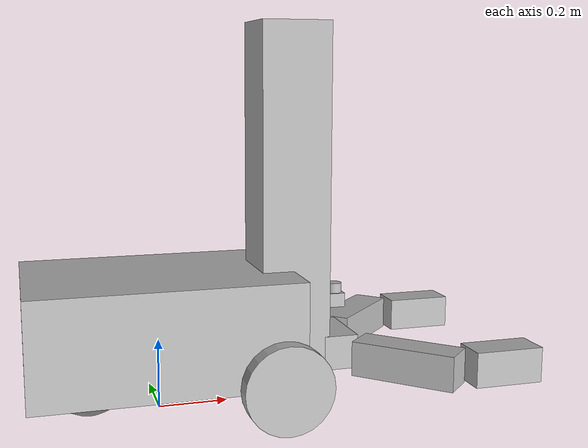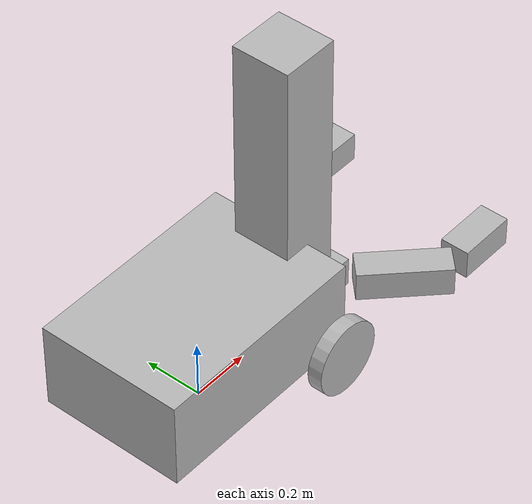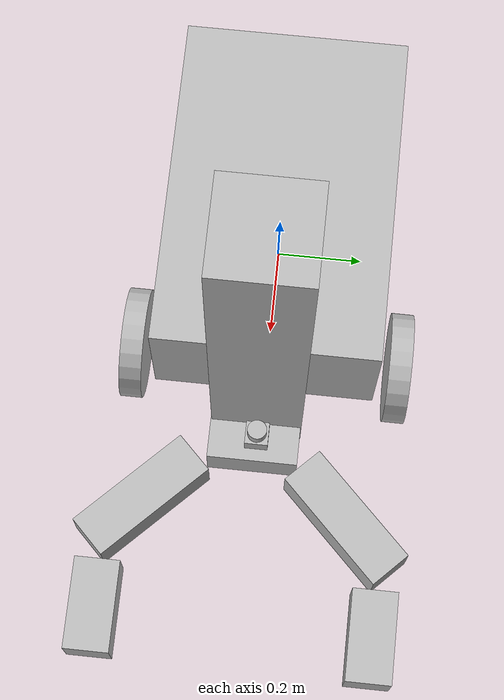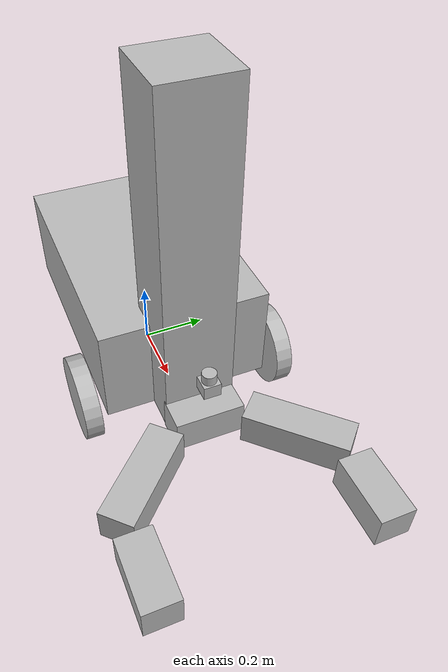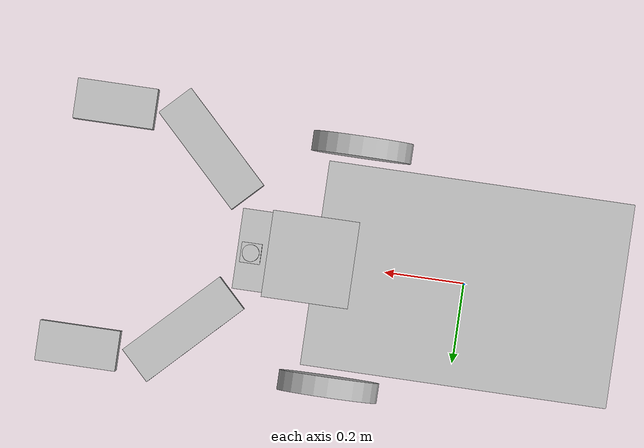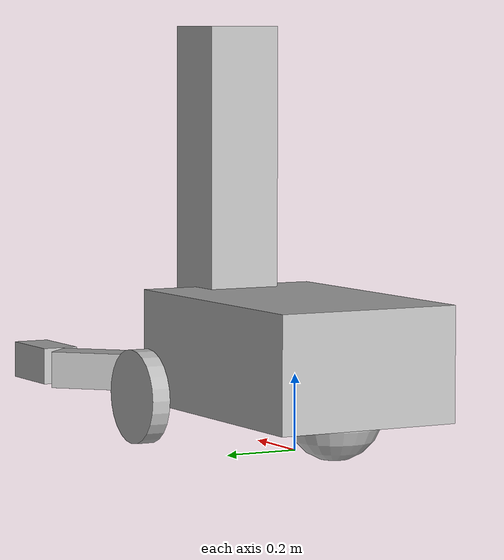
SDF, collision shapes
<?xml version='1.0'?>
<sdf version='1.6'>
  <model name='project1_mobile_manipulator'>
    <link name='project1_gripper::riser'>
      <pose frame=''>0.383654 -0.005982 0.6 0 -0 0</pose>
      <inertial>
        <pose frame=''>0 0 -0.5 0 -0 0</pose>
        <inertia>
          <ixx>0.01</ixx>
          <ixy>0</ixy>
          <ixz>0</ixz>
          <iyy>0.01</iyy>
          <iyz>0</iyz>
          <izz>0.01</izz>
        </inertia>
        <mass>10</mass>
      </inertial>
      <self_collide>0</self_collide>
      <kinematic>0</kinematic>
      <visual name='visual'>
        <geometry>
          <box>
            <size>0.2 0.2 1</size>
          </box>
        </geometry>
        <material>
          <script>
            <uri>__default__</uri>
            <name>__default__</name>
          </script>
          <shader type='pixel'>
            <normal_map>__default__</normal_map>
          </shader>
        </material>
        <pose frame=''>0 0 0 0 -0 0</pose>
        <cast_shadows>1</cast_shadows>
        <transparency>0</transparency>
      </visual>
      <collision name='collision'>
        <laser_retro>0</laser_retro>
        <max_contacts>10</max_contacts>
        <pose frame=''>0 0 0 0 -0 0</pose>
        <geometry>
          <box>
            <size>0.2 0.2 1</size>
          </box>
        </geometry>
        <surface>
          <friction>
            <ode>
              <mu>1</mu>
              <mu2>1</mu2>
              <fdir1>0 0 0</fdir1>
              <slip1>0</slip1>
              <slip2>0</slip2>
            </ode>
            <torsional>
              <coefficient>1</coefficient>
              <patch_radius>0</patch_radius>
              <surface_radius>0</surface_radius>
              <use_patch_radius>1</use_patch_radius>
              <ode>
                <slip>0</slip>
              </ode>
            </torsional>
          </friction>
          <bounce>
            <restitution_coefficient>0</restitution_coefficient>
            <threshold>1e+06</threshold>
          </bounce>
          <contact>
            <collide_without_contact>0</collide_without_contact>
            <collide_without_contact_bitmask>1</collide_without_contact_bitmask>
            <collide_bitmask>1</collide_bitmask>
            <ode>
              <soft_cfm>0</soft_cfm>
              <soft_erp>0.2</soft_erp>
              <kp>1e+13</kp>
              <kd>1</kd>
              <max_vel>0.01</max_vel>
              <min_depth>0</min_depth>
            </ode>
            <bullet>
              <split_impulse>1</split_impulse>
              <split_impulse_penetration_threshold>-0.01</split_impulse_penetration_threshold>
              <soft_cfm>0</soft_cfm>
              <soft_erp>0.2</soft_erp>
              <kp>1e+13</kp>
              <kd>1</kd>
            </bullet>
          </contact>
        </surface>
      </collision>
    </link>
    <link name='hokuyo::link'>
      <pose frame=''>0.533919 -0.000274 0.3 0 -0 0</pose>
      <inertial>
        <mass>0.1</mass>
        <inertia>
          <ixx>1</ixx>
          <ixy>0</ixy>
          <ixz>0</ixz>
          <iyy>1</iyy>
          <iyz>0</iyz>
          <izz>1</izz>
        </inertia>
      </inertial>
      <self_collide>0</self_collide>
      <kinematic>0</kinematic>
      <sensor name='laser' type='ray'>
        <pose frame=''>0.01 0 0.0175 0 -0 0</pose>
        <ray>
          <scan>
            <horizontal>
              <samples>640</samples>
              <resolution>1</resolution>
              <min_angle>-2.26889</min_angle>
              <max_angle>2.2689</max_angle>
            </horizontal>
            <vertical>
              <samples>1</samples>
              <min_angle>0</min_angle>
              <max_angle>0</max_angle>
            </vertical>
          </scan>
          <range>
            <min>0.08</min>
            <max>10</max>
            <resolution>0.01</resolution>
          </range>
        </ray>
        <plugin name='laser' filename='libRayPlugin.so'/>
        <always_on>1</always_on>
        <update_rate>30</update_rate>
        <visualize>1</visualize>
      </sensor>
      <visual name='visual'>
        <geometry>
          <mesh>
            <uri>model://hokuyo/meshes/hokuyo.dae</uri>
          </mesh>
        </geometry>
        <material>
          <shader type='pixel'/>
        </material>
        <pose frame=''>0 0 0 0 -0 0</pose>
        <cast_shadows>1</cast_shadows>
        <transparency>0</transparency>
      </visual>
      <collision name='collision-top'>
        <laser_retro>0</laser_retro>
        <max_contacts>10</max_contacts>
        <pose frame=''>0 0 0.0205 0 -0 0</pose>
        <geometry>
          <cylinder>
            <radius>0.021</radius>
            <length>0.029</length>
          </cylinder>
        </geometry>
        <surface>
          <friction>
            <ode>
              <mu>1</mu>
              <mu2>1</mu2>
              <fdir1>0 0 0</fdir1>
              <slip1>0</slip1>
              <slip2>0</slip2>
            </ode>
            <torsional>
              <coefficient>1</coefficient>
              <patch_radius>0</patch_radius>
              <surface_radius>0</surface_radius>
              <use_patch_radius>1</use_patch_radius>
              <ode>
                <slip>0</slip>
              </ode>
            </torsional>
          </friction>
          <bounce>
            <restitution_coefficient>0</restitution_coefficient>
            <threshold>1e+06</threshold>
          </bounce>
          <contact>
            <collide_without_contact>0</collide_without_contact>
            <collide_without_contact_bitmask>1</collide_without_contact_bitmask>
            <collide_bitmask>1</collide_bitmask>
            <ode>
              <soft_cfm>0</soft_cfm>
              <soft_erp>0.2</soft_erp>
              <kp>1e+13</kp>
              <kd>1</kd>
              <max_vel>0.01</max_vel>
              <min_depth>0</min_depth>
            </ode>
            <bullet>
              <split_impulse>1</split_impulse>
              <split_impulse_penetration_threshold>-0.01</split_impulse_penetration_threshold>
              <soft_cfm>0</soft_cfm>
              <soft_erp>0.2</soft_erp>
              <kp>1e+13</kp>
              <kd>1</kd>
            </bullet>
          </contact>
        </surface>
      </collision>
      <collision name='collision-base'>
        <laser_retro>0</laser_retro>
        <max_contacts>10</max_contacts>
        <pose frame=''>0 0 -0.0145 0 -0 0</pose>
        <geometry>
          <box>
            <size>0.05 0.05 0.041</size>
          </box>
        </geometry>
        <surface>
          <friction>
            <ode>
              <mu>1</mu>
              <mu2>1</mu2>
              <fdir1>0 0 0</fdir1>
              <slip1>0</slip1>
              <slip2>0</slip2>
            </ode>
            <torsional>
              <coefficient>1</coefficient>
              <patch_radius>0</patch_radius>
              <surface_radius>0</surface_radius>
              <use_patch_radius>1</use_patch_radius>
              <ode>
                <slip>0</slip>
              </ode>
            </torsional>
          </friction>
          <bounce>
            <restitution_coefficient>0</restitution_coefficient>
            <threshold>1e+06</threshold>
          </bounce>
          <contact>
            <collide_without_contact>0</collide_without_contact>
            <collide_without_contact_bitmask>1</collide_without_contact_bitmask>
            <collide_bitmask>1</collide_bitmask>
            <ode>
              <soft_cfm>0</soft_cfm>
              <soft_erp>0.2</soft_erp>
              <kp>1e+13</kp>
              <kd>1</kd>
              <max_vel>0.01</max_vel>
              <min_depth>0</min_depth>
            </ode>
            <bullet>
              <split_impulse>1</split_impulse>
              <split_impulse_penetration_threshold>-0.01</split_impulse_penetration_threshold>
              <soft_cfm>0</soft_cfm>
              <soft_erp>0.2</soft_erp>
              <kp>1e+13</kp>
              <kd>1</kd>
            </bullet>
          </contact>
        </surface>
      </collision>
    </link>
    <link name='project1_gripper::left_finger'>
      <pose frame=''>0.673848 0.210079 0.15 0 0 -0.78539</pose>
      <inertial>
        <inertia>
          <ixx>0.01</ixx>
          <ixy>0</ixy>
          <ixz>0</ixz>
          <iyy>0.01</iyy>
          <iyz>0</iyz>
          <izz>0.01</izz>
        </inertia>
        <mass>0.1</mass>
      </inertial>
      <self_collide>0</self_collide>
      <kinematic>0</kinematic>
      <visual name='visual'>
        <geometry>
          <box>
            <size>0.1 0.3 0.1</size>
          </box>
        </geometry>
        <material>
          <script>
            <uri>__default__</uri>
            <name>__default__</name>
          </script>
          <shader type='pixel'/>
        </material>
        <pose frame=''>0 0 0 0 -0 0</pose>
        <cast_shadows>1</cast_shadows>
        <transparency>0</transparency>
      </visual>
      <collision name='collision'>
        <laser_retro>0</laser_retro>
        <max_contacts>10</max_contacts>
        <pose frame=''>0 0 0 0 -0 0</pose>
        <geometry>
          <box>
            <size>0.1 0.3 0.1</size>
          </box>
        </geometry>
        <surface>
          <friction>
            <ode>
              <mu>1</mu>
              <mu2>1</mu2>
              <fdir1>0 0 0</fdir1>
              <slip1>0</slip1>
              <slip2>0</slip2>
            </ode>
            <torsional>
              <coefficient>1</coefficient>
              <patch_radius>0</patch_radius>
              <surface_radius>0</surface_radius>
              <use_patch_radius>1</use_patch_radius>
              <ode>
                <slip>0</slip>
              </ode>
            </torsional>
          </friction>
          <bounce>
            <restitution_coefficient>0</restitution_coefficient>
            <threshold>1e+06</threshold>
          </bounce>
          <contact>
            <collide_without_contact>0</collide_without_contact>
            <collide_without_contact_bitmask>1</collide_without_contact_bitmask>
            <collide_bitmask>1</collide_bitmask>
            <ode>
              <soft_cfm>0</soft_cfm>
              <soft_erp>0.2</soft_erp>
              <kp>1e+13</kp>
              <kd>1</kd>
              <max_vel>0.01</max_vel>
              <min_depth>0</min_depth>
            </ode>
            <bullet>
              <split_impulse>1</split_impulse>
              <split_impulse_penetration_threshold>-0.01</split_impulse_penetration_threshold>
              <soft_cfm>0</soft_cfm>
              <soft_erp>0.2</soft_erp>
              <kp>1e+13</kp>
              <kd>1</kd>
            </bullet>
          </contact>
        </surface>
      </collision>
    </link>
    <link name='project1_gripper::left_finger_tip'>
      <pose frame=''>0.926306 0.287229 0.15 0 -0 1.5707</pose>
      <inertial>
        <inertia>
          <ixx>0.01</ixx>
          <ixy>0</ixy>
          <ixz>0</ixz>
          <iyy>0.01</iyy>
          <iyz>0</iyz>
          <izz>0.01</izz>
        </inertia>
        <mass>0.1</mass>
      </inertial>
      <self_collide>0</self_collide>
      <kinematic>0</kinematic>
      <visual name='visual'>
        <geometry>
          <box>
            <size>0.1 0.2 0.1</size>
          </box>
        </geometry>
        <material>
          <script>
            <uri>__default__</uri>
            <name>__default__</name>
          </script>
          <shader type='pixel'/>
        </material>
        <pose frame=''>0 0 0 0 -0 0</pose>
        <cast_shadows>1</cast_shadows>
        <transparency>0</transparency>
      </visual>
      <collision name='collision'>
        <laser_retro>0</laser_retro>
        <max_contacts>10</max_contacts>
        <pose frame=''>0 0 0 0 -0 0</pose>
        <geometry>
          <box>
            <size>0.1 0.2 0.1</size>
          </box>
        </geometry>
        <surface>
          <friction>
            <ode>
              <mu>1</mu>
              <mu2>1</mu2>
              <fdir1>0 0 0</fdir1>
              <slip1>0</slip1>
              <slip2>0</slip2>
            </ode>
            <torsional>
              <coefficient>1</coefficient>
              <patch_radius>0</patch_radius>
              <surface_radius>0</surface_radius>
              <use_patch_radius>1</use_patch_radius>
              <ode>
                <slip>0</slip>
              </ode>
            </torsional>
          </friction>
          <bounce>
            <restitution_coefficient>0</restitution_coefficient>
            <threshold>1e+06</threshold>
          </bounce>
          <contact>
            <collide_without_contact>0</collide_without_contact>
            <collide_without_contact_bitmask>1</collide_without_contact_bitmask>
            <collide_bitmask>1</collide_bitmask>
            <ode>
              <soft_cfm>0</soft_cfm>
              <soft_erp>0.2</soft_erp>
              <kp>1e+13</kp>
              <kd>1</kd>
              <max_vel>0.01</max_vel>
              <min_depth>0</min_depth>
            </ode>
            <bullet>
              <split_impulse>1</split_impulse>
              <split_impulse_penetration_threshold>-0.01</split_impulse_penetration_threshold>
              <soft_cfm>0</soft_cfm>
              <soft_erp>0.2</soft_erp>
              <kp>1e+13</kp>
              <kd>1</kd>
            </bullet>
          </contact>
        </surface>
      </collision>
    </link>
    <link name='project1_gripper::palm'>
      <pose frame=''>0.519563 -0.007784 0.15 0 -0 0</pose>
      <inertial>
        <inertia>
          <ixx>0.01</ixx>
          <ixy>0</ixy>
          <ixz>0</ixz>
          <iyy>0.01</iyy>
          <iyz>0</iyz>
          <izz>0.01</izz>
        </inertia>
        <mass>0.5</mass>
      </inertial>
      <self_collide>0</self_collide>
      <kinematic>0</kinematic>
      <visual name='visual'>
        <geometry>
          <box>
            <size>0.1 0.2 0.1</size>
          </box>
        </geometry>
        <material>
          <script>
            <uri>__default__</uri>
            <name>__default__</name>
          </script>
          <shader type='pixel'/>
        </material>
        <pose frame=''>0 0 0 0 -0 0</pose>
        <cast_shadows>1</cast_shadows>
        <transparency>0</transparency>
      </visual>
      <collision name='collision'>
        <laser_retro>0</laser_retro>
        <max_contacts>10</max_contacts>
        <pose frame=''>0 0 0 0 -0 0</pose>
        <geometry>
          <box>
            <size>0.1 0.2 0.1</size>
          </box>
        </geometry>
        <surface>
          <friction>
            <ode>
              <mu>1</mu>
              <mu2>1</mu2>
              <fdir1>0 0 0</fdir1>
              <slip1>0</slip1>
              <slip2>0</slip2>
            </ode>
            <torsional>
              <coefficient>1</coefficient>
              <patch_radius>0</patch_radius>
              <surface_radius>0</surface_radius>
              <use_patch_radius>1</use_patch_radius>
              <ode>
                <slip>0</slip>
              </ode>
            </torsional>
          </friction>
          <bounce>
            <restitution_coefficient>0</restitution_coefficient>
            <threshold>1e+06</threshold>
          </bounce>
          <contact>
            <collide_without_contact>0</collide_without_contact>
            <collide_without_contact_bitmask>1</collide_without_contact_bitmask>
            <collide_bitmask>1</collide_bitmask>
            <ode>
              <soft_cfm>0</soft_cfm>
              <soft_erp>0.2</soft_erp>
              <kp>1e+13</kp>
              <kd>1</kd>
              <max_vel>0.01</max_vel>
              <min_depth>0</min_depth>
            </ode>
            <bullet>
              <split_impulse>1</split_impulse>
              <split_impulse_penetration_threshold>-0.01</split_impulse_penetration_threshold>
              <soft_cfm>0</soft_cfm>
              <soft_erp>0.2</soft_erp>
              <kp>1e+13</kp>
              <kd>1</kd>
            </bullet>
          </contact>
        </surface>
      </collision>
    </link>
    <link name='project1_gripper::right_finger'>
      <pose frame=''>0.669257 -0.241285 0.15 0 -0 0.78539</pose>
      <inertial>
        <inertia>
          <ixx>0.01</ixx>
          <ixy>0</ixy>
          <ixz>0</ixz>
          <iyy>0.01</iyy>
          <iyz>0</iyz>
          <izz>0.01</izz>
        </inertia>
        <mass>0.1</mass>
      </inertial>
      <self_collide>0</self_collide>
      <kinematic>0</kinematic>
      <visual name='visual'>
        <geometry>
          <box>
            <size>0.1 0.3 0.1</size>
          </box>
        </geometry>
        <material>
          <script>
            <uri>__default__</uri>
            <name>__default__</name>
          </script>
          <shader type='pixel'/>
        </material>
        <pose frame=''>0 0 0 0 -0 0</pose>
        <cast_shadows>1</cast_shadows>
        <transparency>0</transparency>
      </visual>
      <collision name='collision'>
        <laser_retro>0</laser_retro>
        <max_contacts>10</max_contacts>
        <pose frame=''>0 0 0 0 -0 0</pose>
        <geometry>
          <box>
            <size>0.1 0.3 0.1</size>
          </box>
        </geometry>
        <surface>
          <friction>
            <ode>
              <mu>1</mu>
              <mu2>1</mu2>
              <fdir1>0 0 0</fdir1>
              <slip1>0</slip1>
              <slip2>0</slip2>
            </ode>
            <torsional>
              <coefficient>1</coefficient>
              <patch_radius>0</patch_radius>
              <surface_radius>0</surface_radius>
              <use_patch_radius>1</use_patch_radius>
              <ode>
                <slip>0</slip>
              </ode>
            </torsional>
          </friction>
          <bounce>
            <restitution_coefficient>0</restitution_coefficient>
            <threshold>1e+06</threshold>
          </bounce>
          <contact>
            <collide_without_contact>0</collide_without_contact>
            <collide_without_contact_bitmask>1</collide_without_contact_bitmask>
            <collide_bitmask>1</collide_bitmask>
            <ode>
              <soft_cfm>0</soft_cfm>
              <soft_erp>0.2</soft_erp>
              <kp>1e+13</kp>
              <kd>1</kd>
              <max_vel>0.01</max_vel>
              <min_depth>0</min_depth>
            </ode>
            <bullet>
              <split_impulse>1</split_impulse>
              <split_impulse_penetration_threshold>-0.01</split_impulse_penetration_threshold>
              <soft_cfm>0</soft_cfm>
              <soft_erp>0.2</soft_erp>
              <kp>1e+13</kp>
              <kd>1</kd>
            </bullet>
          </contact>
        </surface>
      </collision>
    </link>
    <link name='project1_gripper::right_finger_tip'>
      <pose frame=''>0.919479 -0.317874 0.15 0 -0 1.5707</pose>
      <inertial>
        <inertia>
          <ixx>0.01</ixx>
          <ixy>0</ixy>
          <ixz>0</ixz>
          <iyy>0.01</iyy>
          <iyz>0</iyz>
          <izz>0.01</izz>
        </inertia>
        <mass>0.1</mass>
      </inertial>
      <self_collide>0</self_collide>
      <kinematic>0</kinematic>
      <visual name='visual'>
        <geometry>
          <box>
            <size>0.1 0.2 0.1</size>
          </box>
        </geometry>
        <material>
          <script>
            <uri>__default__</uri>
            <name>__default__</name>
          </script>
          <shader type='pixel'/>
        </material>
        <pose frame=''>0 0 0 0 -0 0</pose>
        <cast_shadows>1</cast_shadows>
        <transparency>0</transparency>
      </visual>
      <collision name='collision'>
        <laser_retro>0</laser_retro>
        <max_contacts>10</max_contacts>
        <pose frame=''>0 0 0 0 -0 0</pose>
        <geometry>
          <box>
            <size>0.1 0.2 0.1</size>
          </box>
        </geometry>
        <surface>
          <friction>
            <ode>
              <mu>1</mu>
              <mu2>1</mu2>
              <fdir1>0 0 0</fdir1>
              <slip1>0</slip1>
              <slip2>0</slip2>
            </ode>
            <torsional>
              <coefficient>1</coefficient>
              <patch_radius>0</patch_radius>
              <surface_radius>0</surface_radius>
              <use_patch_radius>1</use_patch_radius>
              <ode>
                <slip>0</slip>
              </ode>
            </torsional>
          </friction>
          <bounce>
            <restitution_coefficient>0</restitution_coefficient>
            <threshold>1e+06</threshold>
          </bounce>
          <contact>
            <collide_without_contact>0</collide_without_contact>
            <collide_without_contact_bitmask>1</collide_without_contact_bitmask>
            <collide_bitmask>1</collide_bitmask>
            <ode>
              <soft_cfm>0</soft_cfm>
              <soft_erp>0.2</soft_erp>
              <kp>1e+13</kp>
              <kd>1</kd>
              <max_vel>0.01</max_vel>
              <min_depth>0</min_depth>
            </ode>
            <bullet>
              <split_impulse>1</split_impulse>
              <split_impulse_penetration_threshold>-0.01</split_impulse_penetration_threshold>
              <soft_cfm>0</soft_cfm>
              <soft_erp>0.2</soft_erp>
              <kp>1e+13</kp>
              <kd>1</kd>
            </bullet>
          </contact>
        </surface>
      </collision>
    </link>
    <link name='project1_robot::chassis'>
      <pose frame=''>0 0 0.25 0 -0 0</pose>
      <inertial>
        <mass>20</mass>
        <pose frame=''>-0.1 0 -0.1 0 -0 0</pose>
        <inertia>
          <ixx>0.5</ixx>
          <iyy>1</iyy>
          <izz>0.1</izz>
          <ixy>0</ixy>
          <ixz>0</ixz>
          <iyz>0</iyz>
        </inertia>
      </inertial>
      <self_collide>0</self_collide>
      <kinematic>0</kinematic>
      <visual name='visual'>
        <geometry>
          <box>
            <size>0.75 0.5 0.3</size>
          </box>
        </geometry>
        <material>
          <shader type='pixel'>
            <normal_map>__default__</normal_map>
          </shader>
        </material>
        <pose frame=''>0 0 0 0 -0 0</pose>
        <cast_shadows>1</cast_shadows>
        <transparency>0</transparency>
      </visual>
      <visual name='caster_visual'>
        <pose frame=''>-0.2 0 -0.125 0 -0 0</pose>
        <geometry>
          <sphere>
            <radius>0.125</radius>
          </sphere>
        </geometry>
        <material>
          <shader type='pixel'>
            <normal_map>__default__</normal_map>
          </shader>
        </material>
        <cast_shadows>1</cast_shadows>
        <transparency>0</transparency>
      </visual>
      <collision name='collision'>
        <laser_retro>0</laser_retro>
        <max_contacts>10</max_contacts>
        <pose frame=''>0 0 0 0 -0 0</pose>
        <geometry>
          <box>
            <size>0.75 0.5 0.3</size>
          </box>
        </geometry>
        <surface>
          <friction>
            <ode>
              <mu>1</mu>
              <mu2>1</mu2>
              <fdir1>0 0 0</fdir1>
              <slip1>0</slip1>
              <slip2>0</slip2>
            </ode>
            <torsional>
              <coefficient>1</coefficient>
              <patch_radius>0</patch_radius>
              <surface_radius>0</surface_radius>
              <use_patch_radius>1</use_patch_radius>
              <ode>
                <slip>0</slip>
              </ode>
            </torsional>
          </friction>
          <bounce>
            <restitution_coefficient>0</restitution_coefficient>
            <threshold>1e+06</threshold>
          </bounce>
          <contact>
            <collide_without_contact>0</collide_without_contact>
            <collide_without_contact_bitmask>1</collide_without_contact_bitmask>
            <collide_bitmask>1</collide_bitmask>
            <ode>
              <soft_cfm>0</soft_cfm>
              <soft_erp>0.2</soft_erp>
              <kp>1e+13</kp>
              <kd>1</kd>
              <max_vel>0.01</max_vel>
              <min_depth>0</min_depth>
            </ode>
            <bullet>
              <split_impulse>1</split_impulse>
              <split_impulse_penetration_threshold>-0.01</split_impulse_penetration_threshold>
              <soft_cfm>0</soft_cfm>
              <soft_erp>0.2</soft_erp>
              <kp>1e+13</kp>
              <kd>1</kd>
            </bullet>
          </contact>
        </surface>
      </collision>
      <collision name='caster_collision'>
        <laser_retro>0</laser_retro>
        <max_contacts>10</max_contacts>
        <pose frame=''>-0.2 0 -0.125 0 -0 0</pose>
        <geometry>
          <sphere>
            <radius>0.125</radius>
          </sphere>
        </geometry>
        <surface>
          <friction>
            <ode>
              <mu>0</mu>
              <mu2>0</mu2>
              <fdir1>0 0 0</fdir1>
              <slip1>0</slip1>
              <slip2>0</slip2>
            </ode>
            <torsional>
              <coefficient>1</coefficient>
              <patch_radius>0</patch_radius>
              <surface_radius>0</surface_radius>
              <use_patch_radius>1</use_patch_radius>
              <ode>
                <slip>0</slip>
              </ode>
            </torsional>
          </friction>
          <bounce>
            <restitution_coefficient>0</restitution_coefficient>
            <threshold>1e+06</threshold>
          </bounce>
          <contact>
            <collide_without_contact>0</collide_without_contact>
            <collide_without_contact_bitmask>1</collide_without_contact_bitmask>
            <collide_bitmask>1</collide_bitmask>
            <ode>
              <soft_cfm>0</soft_cfm>
              <soft_erp>0.2</soft_erp>
              <kp>1e+13</kp>
              <kd>1</kd>
              <max_vel>0.01</max_vel>
              <min_depth>0</min_depth>
            </ode>
            <bullet>
              <split_impulse>1</split_impulse>
              <split_impulse_penetration_threshold>-0.01</split_impulse_penetration_threshold>
              <soft_cfm>0</soft_cfm>
              <soft_erp>0.2</soft_erp>
              <kp>1e+13</kp>
              <kd>1</kd>
            </bullet>
          </contact>
        </surface>
      </collision>
    </link>
    <link name='project1_robot::left_wheel'>
      <pose frame=''>0.3 0.3 0.125 -0.000572 1.5707 1.57013</pose>
      <inertial>
        <inertia>
          <ixx>1</ixx>
          <ixy>0</ixy>
          <ixz>0</ixz>
          <iyy>1</iyy>
          <iyz>0</iyz>
          <izz>1</izz>
        </inertia>
        <mass>1</mass>
        <pose frame=''>0 0 0 0 -0 0</pose>
      </inertial>
      <self_collide>0</self_collide>
      <kinematic>0</kinematic>
      <visual name='visual'>
        <geometry>
          <cylinder>
            <radius>0.125</radius>
            <length>0.05</length>
          </cylinder>
        </geometry>
        <material>
          <shader type='pixel'>
            <normal_map>__default__</normal_map>
          </shader>
        </material>
        <pose frame=''>0 0 0 0 -0 0</pose>
        <cast_shadows>1</cast_shadows>
        <transparency>0</transparency>
      </visual>
      <collision name='collision'>
        <laser_retro>0</laser_retro>
        <max_contacts>10</max_contacts>
        <pose frame=''>0 0 0 0 -0 0</pose>
        <geometry>
          <cylinder>
            <radius>0.125</radius>
            <length>0.05</length>
          </cylinder>
        </geometry>
        <surface>
          <friction>
            <ode>
              <mu>1</mu>
              <mu2>1</mu2>
              <fdir1>0 0 0</fdir1>
              <slip1>0</slip1>
              <slip2>0</slip2>
            </ode>
            <torsional>
              <coefficient>1</coefficient>
              <patch_radius>0</patch_radius>
              <surface_radius>0</surface_radius>
              <use_patch_radius>1</use_patch_radius>
              <ode>
                <slip>0</slip>
              </ode>
            </torsional>
          </friction>
          <bounce>
            <restitution_coefficient>0</restitution_coefficient>
            <threshold>1e+06</threshold>
          </bounce>
          <contact>
            <collide_without_contact>0</collide_without_contact>
            <collide_without_contact_bitmask>1</collide_without_contact_bitmask>
            <collide_bitmask>1</collide_bitmask>
            <ode>
              <soft_cfm>0</soft_cfm>
              <soft_erp>0.2</soft_erp>
              <kp>1e+13</kp>
              <kd>1</kd>
              <max_vel>0.01</max_vel>
              <min_depth>0</min_depth>
            </ode>
            <bullet>
              <split_impulse>1</split_impulse>
              <split_impulse_penetration_threshold>-0.01</split_impulse_penetration_threshold>
              <soft_cfm>0</soft_cfm>
              <soft_erp>0.2</soft_erp>
              <kp>1e+13</kp>
              <kd>1</kd>
            </bullet>
          </contact>
        </surface>
      </collision>
    </link>
    <link name='project1_robot::right_wheel'>
      <pose frame=''>0.3 -0.3 0.125 -0.000572 1.5707 1.57013</pose>
      <inertial>
        <inertia>
          <ixx>1</ixx>
          <ixy>0</ixy>
          <ixz>0</ixz>
          <iyy>1</iyy>
          <iyz>0</iyz>
          <izz>1</izz>
        </inertia>
        <mass>1</mass>
        <pose frame=''>0 0 0 0 -0 0</pose>
      </inertial>
      <self_collide>0</self_collide>
      <kinematic>0</kinematic>
      <visual name='visual'>
        <geometry>
          <cylinder>
            <radius>0.125</radius>
            <length>0.05</length>
          </cylinder>
        </geometry>
        <material>
          <shader type='pixel'>
            <normal_map>__default__</normal_map>
          </shader>
        </material>
        <pose frame=''>0 0 0 0 -0 0</pose>
        <cast_shadows>1</cast_shadows>
        <transparency>0</transparency>
      </visual>
      <collision name='collision'>
        <laser_retro>0</laser_retro>
        <max_contacts>10</max_contacts>
        <pose frame=''>0 0 0 0 -0 0</pose>
        <geometry>
          <cylinder>
            <radius>0.125</radius>
            <length>0.05</length>
          </cylinder>
        </geometry>
        <surface>
          <friction>
            <ode>
              <mu>1</mu>
              <mu2>1</mu2>
              <fdir1>0 0 0</fdir1>
              <slip1>0</slip1>
              <slip2>0</slip2>
            </ode>
            <torsional>
              <coefficient>1</coefficient>
              <patch_radius>0</patch_radius>
              <surface_radius>0</surface_radius>
              <use_patch_radius>1</use_patch_radius>
              <ode>
                <slip>0</slip>
              </ode>
            </torsional>
          </friction>
          <bounce>
            <restitution_coefficient>0</restitution_coefficient>
            <threshold>1e+06</threshold>
          </bounce>
          <contact>
            <collide_without_contact>0</collide_without_contact>
            <collide_without_contact_bitmask>1</collide_without_contact_bitmask>
            <collide_bitmask>1</collide_bitmask>
            <ode>
              <soft_cfm>0</soft_cfm>
              <soft_erp>0.2</soft_erp>
              <kp>1e+13</kp>
              <kd>1</kd>
              <max_vel>0.01</max_vel>
              <min_depth>0</min_depth>
            </ode>
            <bullet>
              <split_impulse>1</split_impulse>
              <split_impulse_penetration_threshold>-0.01</split_impulse_penetration_threshold>
              <soft_cfm>0</soft_cfm>
              <soft_erp>0.2</soft_erp>
              <kp>1e+13</kp>
              <kd>1</kd>
            </bullet>
          </contact>
        </surface>
      </collision>
    </link>
    <joint name='arm_gripper_joint' type='fixed'>
      <parent>project1_robot::chassis</parent>
      <child>project1_gripper::riser</child>
      <pose frame=''>0 0 0 0 -0 0</pose>
      <physics>
        <ode>
          <limit>
            <cfm>0</cfm>
            <erp>0.2</erp>
          </limit>
          <suspension>
            <cfm>0</cfm>
            <erp>0.2</erp>
          </suspension>
        </ode>
      </physics>
    </joint>
    <joint name='hokuyo_joint' type='fixed'>
      <parent>project1_gripper::palm</parent>
      <child>hokuyo::link</child>
      <pose frame=''>0 0 0 0 -0 0</pose>
      <physics>
        <ode>
          <limit>
            <cfm>0</cfm>
            <erp>0.2</erp>
          </limit>
          <suspension>
            <cfm>0</cfm>
            <erp>0.2</erp>
          </suspension>
        </ode>
      </physics>
    </joint>
    <joint name='project1_gripper::left_finger_tip' type='revolute'>
      <parent>project1_gripper::left_finger</parent>
      <child>project1_gripper::left_finger_tip</child>
      <pose frame=''>0 0.1 0 0 -0 0</pose>
      <axis>
        <xyz>0 0 1</xyz>
        <use_parent_model_frame>1</use_parent_model_frame>
        <limit>
          <lower>-0.4</lower>
          <upper>0.4</upper>
          <effort>-1</effort>
          <velocity>-1</velocity>
        </limit>
        <dynamics>
          <spring_reference>0</spring_reference>
          <spring_stiffness>0</spring_stiffness>
          <damping>0</damping>
          <friction>0</friction>
        </dynamics>
      </axis>
      <physics>
        <ode>
          <limit>
            <cfm>0</cfm>
            <erp>0.2</erp>
          </limit>
          <suspension>
            <cfm>0</cfm>
            <erp>0.2</erp>
          </suspension>
        </ode>
      </physics>
    </joint>
    <joint name='project1_gripper::palm_left_finger' type='revolute'>
      <parent>project1_gripper::palm</parent>
      <child>project1_gripper::left_finger</child>
      <pose frame=''>0 -0.15 0 0 -0 0</pose>
      <axis>
        <xyz>0 0 1</xyz>
        <use_parent_model_frame>1</use_parent_model_frame>
        <limit>
          <lower>-0.4</lower>
          <upper>0.4</upper>
          <effort>-1</effort>
          <velocity>-1</velocity>
        </limit>
        <dynamics>
          <spring_reference>0</spring_reference>
          <spring_stiffness>0</spring_stiffness>
          <damping>0</damping>
          <friction>0</friction>
        </dynamics>
      </axis>
      <physics>
        <ode>
          <limit>
            <cfm>0</cfm>
            <erp>0.2</erp>
          </limit>
          <suspension>
            <cfm>0</cfm>
            <erp>0.2</erp>
          </suspension>
        </ode>
      </physics>
    </joint>
    <joint name='project1_gripper::palm_right_finger' type='revolute'>
      <parent>project1_gripper::palm</parent>
      <child>project1_gripper::right_finger</child>
      <pose frame=''>0 0.15 0 0 -0 0</pose>
      <axis>
        <xyz>0 0 1</xyz>
        <use_parent_model_frame>1</use_parent_model_frame>
        <limit>
          <lower>-0.4</lower>
          <upper>0.4</upper>
          <effort>-1</effort>
          <velocity>-1</velocity>
        </limit>
        <dynamics>
          <spring_reference>0</spring_reference>
          <spring_stiffness>0</spring_stiffness>
          <damping>0</damping>
          <friction>0</friction>
        </dynamics>
      </axis>
      <physics>
        <ode>
          <limit>
            <cfm>0</cfm>
            <erp>0.2</erp>
          </limit>
          <suspension>
            <cfm>0</cfm>
            <erp>0.2</erp>
          </suspension>
        </ode>
      </physics>
    </joint>
    <joint name='project1_gripper::palm_riser' type='prismatic'>
      <parent>project1_gripper::riser</parent>
      <child>project1_gripper::palm</child>
      <pose frame=''>0 0 0 0 -0 0</pose>
      <axis>
        <xyz>0 0 1</xyz>
        <use_parent_model_frame>1</use_parent_model_frame>
        <limit>
          <lower>0</lower>
          <upper>0.9</upper>
          <effort>-1</effort>
          <velocity>-1</velocity>
        </limit>
        <dynamics>
          <spring_reference>0</spring_reference>
          <spring_stiffness>0</spring_stiffness>
          <damping>0</damping>
          <friction>0</friction>
        </dynamics>
      </axis>
      <physics>
        <ode>
          <limit>
            <cfm>0</cfm>
            <erp>0.2</erp>
          </limit>
          <suspension>
            <cfm>0</cfm>
            <erp>0.2</erp>
          </suspension>
        </ode>
      </physics>
    </joint>
    <joint name='project1_gripper::right_finger_tip' type='revolute'>
      <parent>project1_gripper::right_finger</parent>
      <child>project1_gripper::right_finger_tip</child>
      <pose frame=''>0 0.1 0 0 -0 0</pose>
      <axis>
        <xyz>0 0 1</xyz>
        <use_parent_model_frame>1</use_parent_model_frame>
        <limit>
          <lower>-0.4</lower>
          <upper>0.4</upper>
          <effort>-1</effort>
          <velocity>-1</velocity>
        </limit>
        <dynamics>
          <spring_reference>0</spring_reference>
          <spring_stiffness>0</spring_stiffness>
          <damping>0</damping>
          <friction>0</friction>
        </dynamics>
      </axis>
      <physics>
        <ode>
          <limit>
            <cfm>0</cfm>
            <erp>0.2</erp>
          </limit>
          <suspension>
            <cfm>0</cfm>
            <erp>0.2</erp>
          </suspension>
        </ode>
      </physics>
    </joint>
    <joint name='project1_robot::left_wheel_hinge' type='revolute'>
      <parent>project1_robot::chassis</parent>
      <child>project1_robot::left_wheel</child>
      <pose frame=''>0 0 -0.03 0 -0 0</pose>
      <axis>
        <xyz>0 1 0</xyz>
        <use_parent_model_frame>1</use_parent_model_frame>
        <limit>
          <lower>-1e+16</lower>
          <upper>1e+16</upper>
          <effort>-1</effort>
          <velocity>-1</velocity>
        </limit>
        <dynamics>
          <spring_reference>0</spring_reference>
          <spring_stiffness>0</spring_stiffness>
          <damping>0</damping>
          <friction>0</friction>
        </dynamics>
      </axis>
      <physics>
        <ode>
          <limit>
            <cfm>0</cfm>
            <erp>0.2</erp>
          </limit>
          <suspension>
            <cfm>0</cfm>
            <erp>0.2</erp>
          </suspension>
        </ode>
      </physics>
    </joint>
    <joint name='project1_robot::right_wheel_hinge' type='revolute'>
      <parent>project1_robot::chassis</parent>
      <child>project1_robot::right_wheel</child>
      <pose frame=''>0 0 0.03 0 -0 0</pose>
      <axis>
        <xyz>0 1 0</xyz>
        <use_parent_model_frame>1</use_parent_model_frame>
        <limit>
          <lower>-1e+16</lower>
          <upper>1e+16</upper>
          <effort>-1</effort>
          <velocity>-1</velocity>
        </limit>
        <dynamics>
          <spring_reference>0</spring_reference>
          <spring_stiffness>0</spring_stiffness>
          <damping>0</damping>
          <friction>0</friction>
        </dynamics>
      </axis>
      <physics>
        <ode>
          <limit>
            <cfm>0</cfm>
            <erp>0.2</erp>
          </limit>
          <suspension>
            <cfm>0</cfm>
            <erp>0.2</erp>
          </suspension>
        </ode>
      </physics>
    </joint>
    <static>0</static>
    <allow_auto_disable>1</allow_auto_disable>
  </model>
</sdf>
